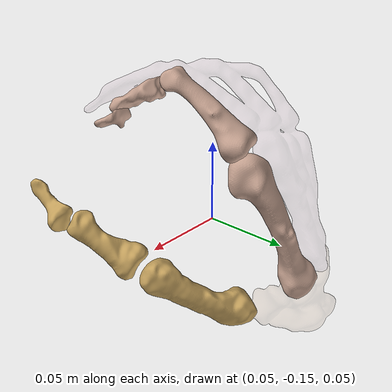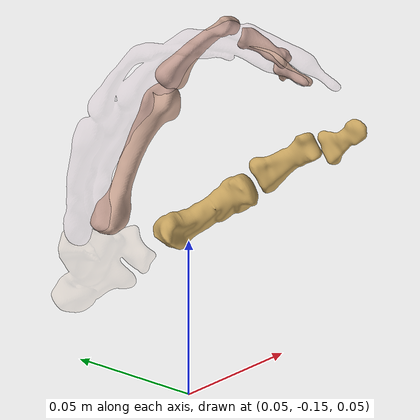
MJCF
<mujoco model="hand model">
    <visual>
        <headlight diffuse="0.6 0.6 0.6" ambient="0.3 0.3 0.3" specular="0 0 0" />
        <rgba haze="0.15 0.25 0.35 1" />
        <map znear="0.01" />
        <global offwidth="1024" offheight="1024" />
    </visual>
    <asset>
        <texture type="skybox" builtin="gradient" rgb1="1 1 1" rgb2="1 1 1" width="512" height="3072" />
        <texture type="2d" name="groundplane" builtin="checker" mark="edge" rgb1="0.2 0.3 0.4" rgb2="0.1 0.2 0.3" markrgb="0.8 0.8 0.8" width="300" height="300" />
        <material name="groundplane" texture="groundplane" texuniform="true" texrepeat="10 10" reflectance="0.3" />
        <material name="bone" reflectance="1" shininess="0" specular="0" rgba="0.68 0.64 0.57 1" />
    </asset>
    <default>
        <default class="zf">
            <geom type="mesh" contype="3" conaffinity="2" group="0" friction="0.7" solref="0.015 1" solimp="0.95 0.99 0.003" rgba="0.78 0.64 0.57 0.9" />
        </default>
        <default class="dau">
            <geom type="mesh" contype="3" conaffinity="2" group="0" friction="0.7" solref="0.015 1" solimp="0.95 0.99 0.003" rgba="0.78 0.64 0.37 0.9" />
        </default>
        <default class="base">
            <geom type="mesh" contype="3" conaffinity="2" group="0" friction="0.7" solref="0.015 1" solimp="0.95 0.99 0.003" rgba="0.74 0.60 0.47 0.1" />
        </default>
        <default class="other">
            <geom type="mesh" contype="3" conaffinity="2" group="0" friction="0.7" solref="0.015 1" solimp="0.95 0.99 0.003" rgba="0.74 0.60 0.67 0.1" />
        </default>
        <default class="visual">
            <geom type="mesh" contype="0" conaffinity="0" group="2" material="bone" rgba="0.68 0.64 0.57 1.0" />
        </default>
        <default class="tracker">
            <geom type="mesh" contype="0" conaffinity="0" group="2" rgba="0.2 0.2 1 0.2" />
        </default>
    </default>

    <compiler angle="radian" meshdir="../../assets/meshes" texturedir="assets" />
    <option integrator="RK4" />

    <statistic center="-0.4 -0.4 0.2" extent="1.2" />

    <asset>
        <mesh file="Segmentation_ZF_DIP.stl" name="ZF-DIP" scale="0.001 0.001 0.001" />
        <mesh file="Segmentation_ZF_PIP.stl" name="ZF-PIP1" scale="0.001 0.001 0.001" />
        <mesh file="zf_mid2.stl" name="ZF-PIP2" scale="0.001 0.001 0.001" />
        <mesh file="zf_mcp.stl" name="ZF-MCP" scale="0.001 0.001 0.001" />
        <mesh file="Segmentation_DAU_Osmetacarpale_1.stl" name="DAU-MCP" scale="0.001 0.001 0.001" />
        <mesh file="Segmentation_DAU_Phalax_proximalis.stl" name="DAU-PIP" scale="0.001 0.001 0.001" />
        <mesh file="Segmentation_DAU_DIP.stl" name="DAU-DIP" scale="0.001 0.001 0.001" />
        <mesh file="backhand.stl" name="BASE" scale="0.001 0.001 0.001" />
        <mesh file="rest.stl" name="OTHER" scale="0.001 0.001 0.001" />
    </asset>

    <worldbody>

        <light pos="0 0 1.5" dir="0 0 -1" directional="true" />

        <body name="ZF_MCP" pos="0.1786929 -0.0033748024 0.36432728" quat="0.94874805 0.26419333 0.15095776 -0.09749395">

            <geom class="zf" mesh="ZF-MCP" type="mesh" />
            <geom class="base" mesh="BASE" type="mesh" />
            <geom class="other" mesh="OTHER" type="mesh" />

            <body name="DAU_MCP" pos="-0.000962324 -0.019184982 0.017791681" quat="0.99468964 0.023491275 0.04547386 0.073249646">
                <geom class="dau" mesh="DAU-MCP" type="mesh" />

                <joint armature="0.001" axis="0.84054613 0.49751014 -0.21439673" limited="true" name="ZF_MCP_to_DAU_CMC" pos="0.39206448 -0.63428384 0.16150984" range="-1 1" type="hinge" />
                <joint armature="0.001" axis="0.49952808 -0.30405933 -0.81118405" limited="true" name="DAU_CMC_to_DAU_MCP" pos="0.04409521 -0.22879592 -0.293284" range="-0.2 1" type="hinge" />

                <body name="DAU_PIP" pos="-0.00093717617 0.0045895777 -0.0028369417" quat="1.0015651 0.006549488 -0.044123363 -0.029252073">
                    <geom class="dau" mesh="DAU-PIP" type="mesh" />

                    <joint armature="0.001" axis="0.54209477 -0.836869 -0.07604977" limited="true" name="DAU_MCP_to_DAU_PIP" pos="-0.18469097 -0.48652703 -0.22401392" range="-0.2 1" type="hinge" />

                    <body name="DAU_DIP" pos="-0.0012958655 -0.0032948935 -0.0036541356" quat="0.96965784 0.061226495 -0.18315564 -0.115682155">
                        <geom class="dau" mesh="DAU-DIP" type="mesh" />

                        <joint armature="0.001" axis="0.31476486 -0.8443229 -0.43363798" limited="true" name="DAU_PIP_to_DAU_DIP" pos="0.10751721 -0.13268265 -0.1632635" range="-0.2 1" type="hinge" />
                        <body name="DAU_TIP" pos="-0.00074479816 -0.0017536795 -0.0035697513" quat="1.0038092 0.0011962169 -0.0009310537 -0.0011646914" />
                    </body>
                </body>
            </body>

            <body name="ZF_PIP2" pos="-0.046074033 0.033852585 -0.06405267" quat="0.9874356 -0.11755736 -0.13004562 0.017527262">
                <geom class="zf" mesh="ZF-PIP2" type="mesh" />

                <joint armature="0.001" axis="0.80049956 0.5814726 -0.14522432" limited="true" name="ZF_MCP_to_ZF_PIP2" pos="0.36442104 -0.4854547 -0.0312614" range="-0.4 1" type="hinge" />

                <body name="ZF_PIP1" pos="0.040611215 -0.101994604 0.08835273" quat="0.95440644 0.2646052 0.13175231 0.034970623">
                    <geom class="zf" mesh="ZF-PIP1" type="mesh" />

                    <joint armature="0.001" axis="0.90603715 0.41903114 0.059240803" limited="true" name="ZF_PIP2_to_ZF_PIP1" pos="-0.018081188 -0.09835906 -0.4562064" range="-0.4 1" type="hinge" />

                    <body name="ZF_DIP" pos="-0.008318945 -0.014799063 0.019187633" quat="0.9986682 0.05504995 0.012197563 0.025887249">
                        <geom class="zf" mesh="ZF-DIP" type="mesh" />

                        <joint armature="0.001" axis="0.8177032 0.5450404 0.18518218" limited="true" name="ZF_PIP1_to_ZF_DIP" pos="-0.1764827 -0.05281666 -0.24259774" range="-0.4 1" type="hinge" />

                        <body name="ZF_TIP" pos="-0.0030359875 -0.004833605 0.0031070171" quat="0.9972513 -0.004509358 -0.0034023756 -0.004413294" />
                    </body>
                </body>
            </body>
        </body>

        <camera name="camera0" pos="1.310 0.211 -0.200" xyaxes="-0.256 0.967 0.000 0.111 0.029 0.993" />

    </worldbody>
</mujoco>
